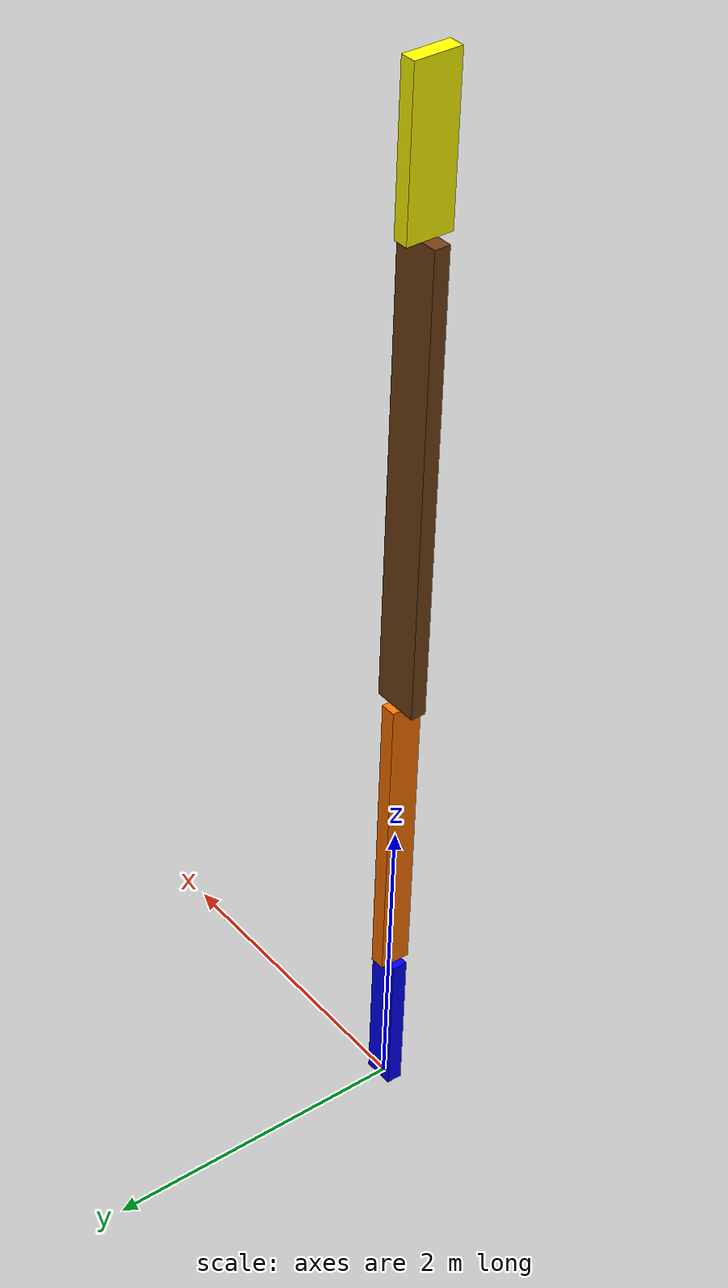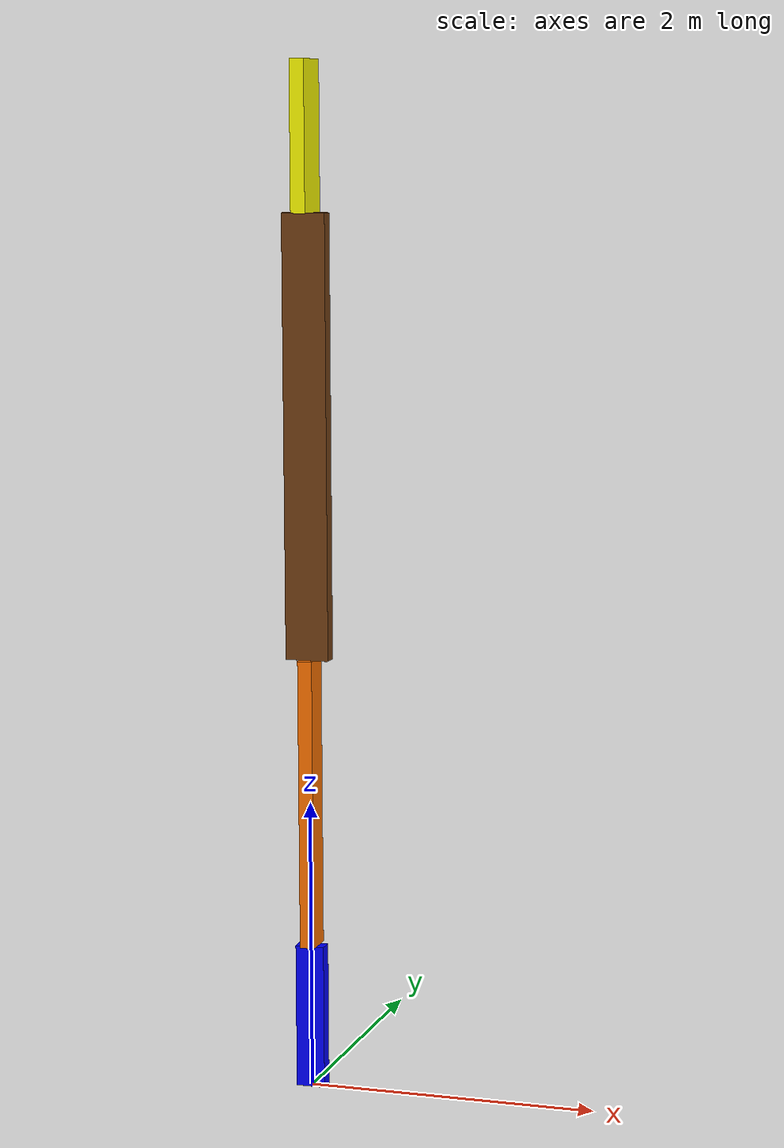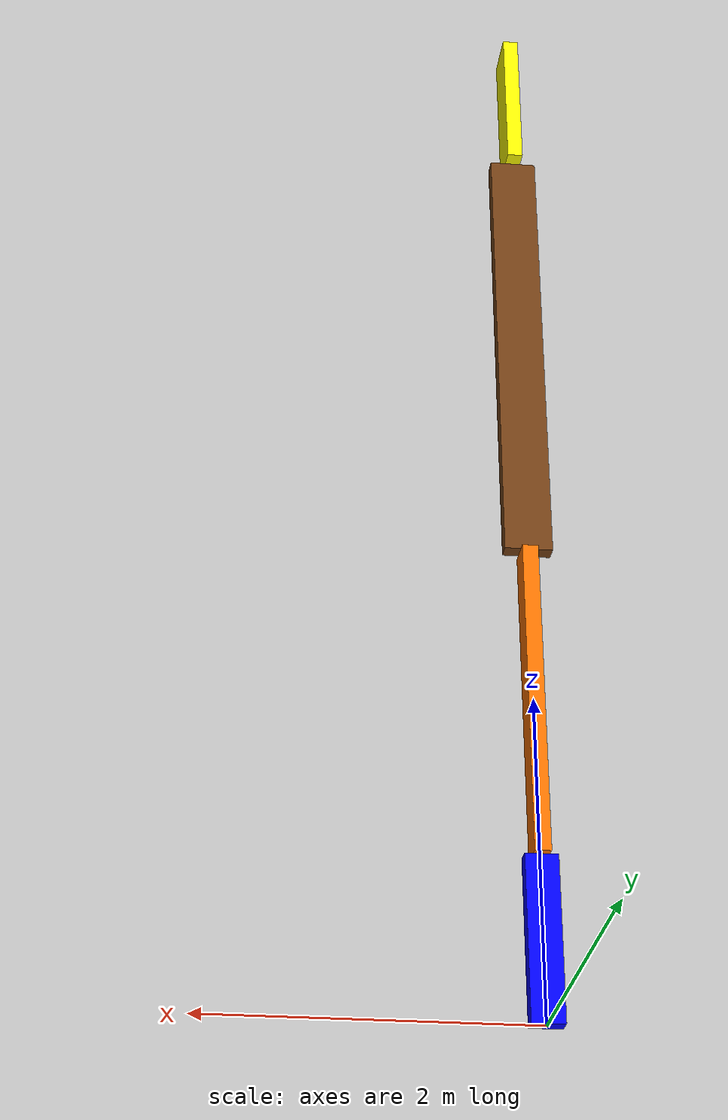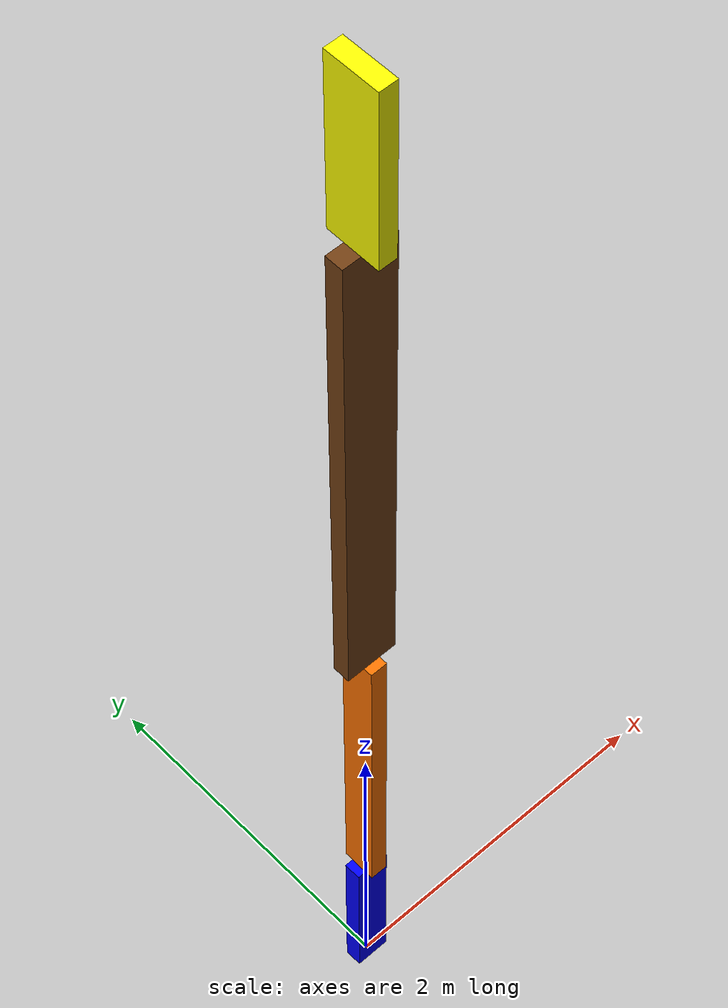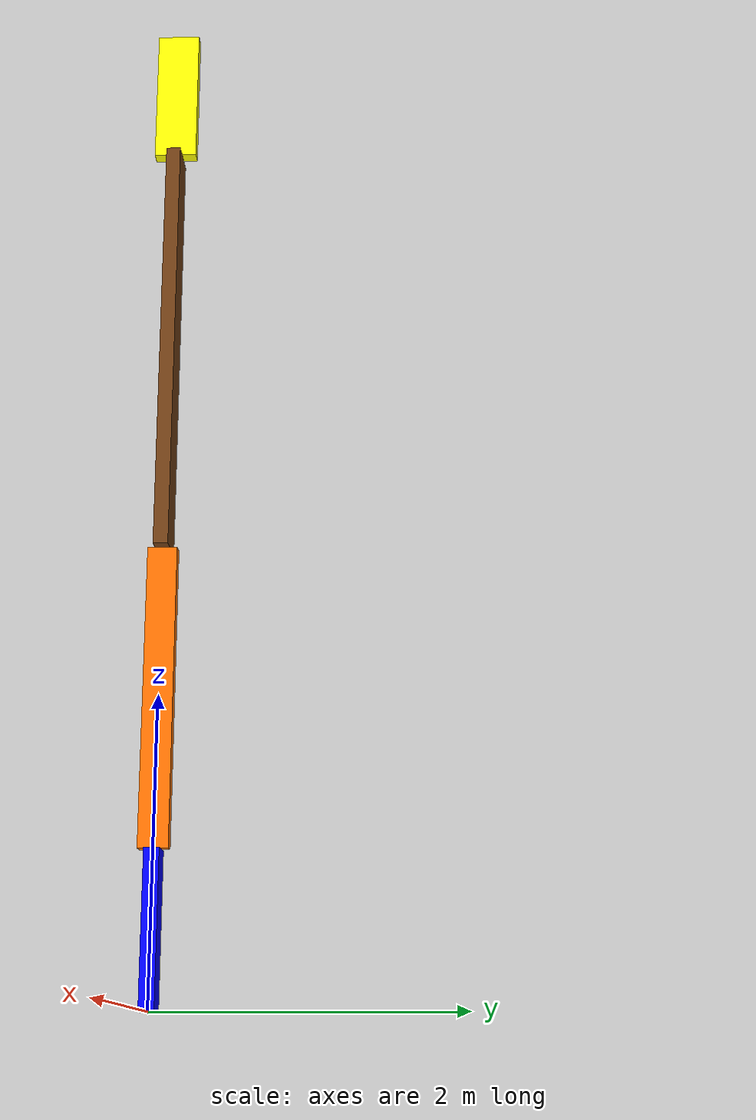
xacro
<?xml version="1.0"?>
<robot xmlns:xacro="http://www.ros.org/wiki/xacro" name="bajana_description_robot">

  <!-- La ruta puede sobrescribirse para validar el modelo desde el código fuente. -->
  <xacro:arg name="controllers_file"
             default="$(find bajana_description)/config/controllers.yaml"/>

  <material name="blue">
    <color rgba="0.0 0.0 1.0 1.0"/>
  </material>

  <material name="orange">
    <color rgba="1.0 0.45 0.0 1.0"/>
  </material>

  <material name="brown">
    <color rgba="0.45 0.25 0.08 1.0"/>
  </material>

  <material name="yellow">
    <color rgba="1.0 1.0 0.0 1.0"/>
  </material>

  <!-- Inercia de una caja maciza. El origen debe coincidir con su centro. -->
  <xacro:macro name="box_inertial" params="mass x y z ox oy oz">
    <inertial>
      <origin xyz="${ox} ${oy} ${oz}" rpy="0 0 0"/>
      <mass value="${mass}"/>
      <inertia
        ixx="${mass * (y * y + z * z) / 12.0}"
        ixy="0.0"
        ixz="0.0"
        iyy="${mass * (x * x + z * z) / 12.0}"
        iyz="0.0"
        izz="${mass * (x * x + y * y) / 12.0}"/>
    </inertial>
  </xacro:macro>

  <!-- Link auxiliar que fija la base del brazo al mundo de la simulación. -->
  <link name="world"/>

  <link name="link1">
    <visual>
      <origin xyz="0 0 0.5" rpy="0 0 0"/>
      <geometry>
        <box size="0.2 0.1 1.0"/>
      </geometry>
      <material name="blue"/>
    </visual>
    <collision>
      <origin xyz="0 0 0.5" rpy="0 0 0"/>
      <geometry>
        <box size="0.2 0.1 1.0"/>
      </geometry>
    </collision>
    <xacro:box_inertial mass="1.0" x="0.2" y="0.1" z="1.0"
                        ox="0.0" oy="0.0" oz="0.5"/>
  </link>

  <joint name="world_to_link1" type="fixed">
    <parent link="world"/>
    <child link="link1"/>
    <origin xyz="0 0 0" rpy="0 0 0"/>
  </joint>

  <joint name="joint1" type="revolute">
    <parent link="link1"/>
    <child link="link2"/>
    <origin xyz="0 0 1.0" rpy="0 0 0"/>
    <axis xyz="0 0 1"/>
    <limit lower="-1.57" upper="1.57" effort="150.0" velocity="1.0"/>
    <dynamics damping="0.2" friction="0.05"/>
  </joint>

  <link name="link2">
    <visual>
      <origin xyz="0 0 1.0" rpy="0 0 0"/>
      <geometry>
        <box size="0.1 0.2 2.0"/>
      </geometry>
      <material name="orange"/>
    </visual>
    <collision>
      <origin xyz="0 0 1.0" rpy="0 0 0"/>
      <geometry>
        <box size="0.1 0.2 2.0"/>
      </geometry>
    </collision>
    <xacro:box_inertial mass="1.0" x="0.1" y="0.2" z="2.0"
                        ox="0.0" oy="0.0" oz="1.0"/>
  </link>

  <joint name="joint2" type="revolute">
    <parent link="link2"/>
    <child link="link3"/>
    <origin xyz="0 0 2.0" rpy="0 0 0"/>
    <axis xyz="0 1 0"/>
    <limit lower="-1.57" upper="1.57" effort="150.0" velocity="1.0"/>
    <dynamics damping="0.2" friction="0.05"/>
  </joint>

  <link name="link3">
    <visual>
      <origin xyz="0 0 1.5" rpy="0 0 0"/>
      <geometry>
        <box size="0.3 0.1 3.0"/>
      </geometry>
      <material name="brown"/>
    </visual>
    <collision>
      <origin xyz="0 0 1.5" rpy="0 0 0"/>
      <geometry>
        <box size="0.3 0.1 3.0"/>
      </geometry>
    </collision>
    <xacro:box_inertial mass="1.0" x="0.3" y="0.1" z="3.0"
                        ox="0.0" oy="0.0" oz="1.5"/>
  </link>

  <joint name="joint3" type="revolute">
    <parent link="link3"/>
    <child link="link4"/>
    <origin xyz="0 0 3.0" rpy="0 0 0"/>
    <axis xyz="0 1 0"/>
    <limit lower="-1.57" upper="1.57" effort="150.0" velocity="1.0"/>
    <dynamics damping="0.2" friction="0.05"/>
  </joint>

  <link name="link4">
    <visual>
      <origin xyz="0 0 0.5" rpy="0 0 0"/>
      <geometry>
        <box size="0.1 0.3 1.0"/>
      </geometry>
      <material name="yellow"/>
    </visual>
    <collision>
      <origin xyz="0 0 0.5" rpy="0 0 0"/>
      <geometry>
        <box size="0.1 0.3 1.0"/>
      </geometry>
    </collision>
    <xacro:box_inertial mass="1.0" x="0.1" y="0.3" z="1.0"
                        ox="0.0" oy="0.0" oz="0.5"/>
  </link>

  <xacro:include filename="bajana_ros2_control.xacro"/>
  <xacro:include filename="bajana_gazebo.xacro"/>

</robot>
